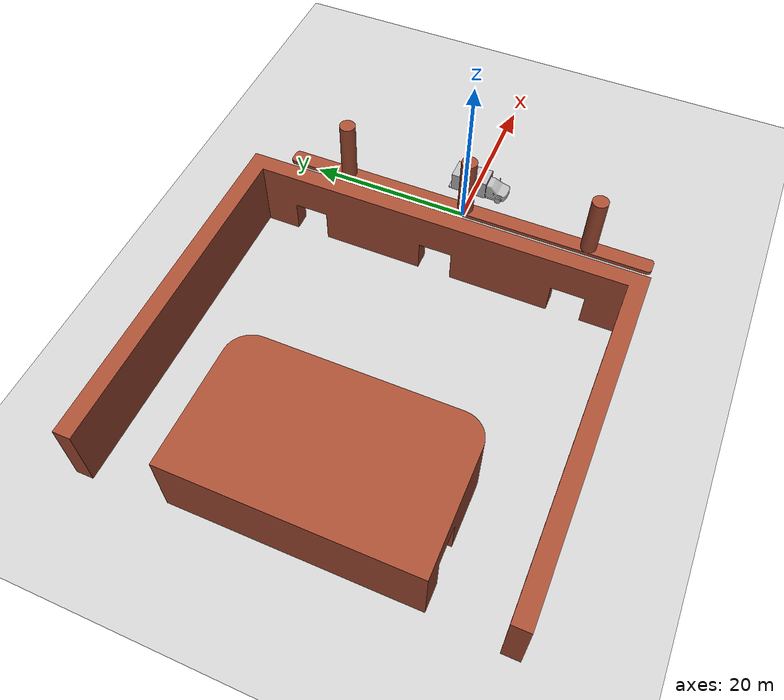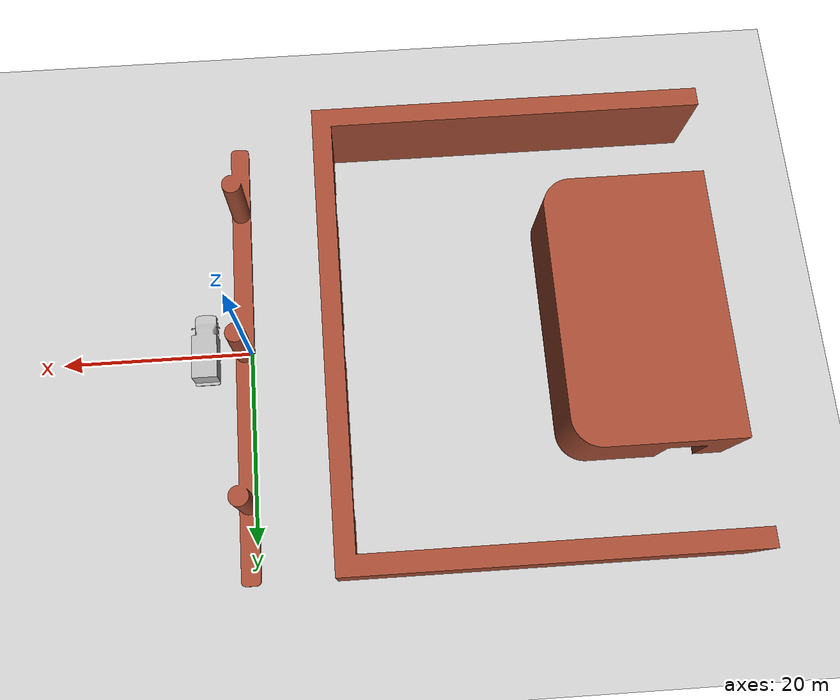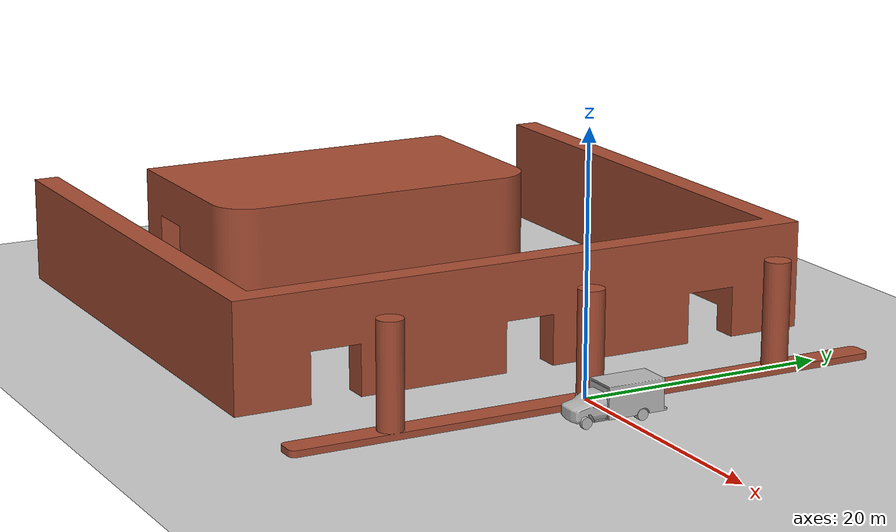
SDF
<sdf version="1.7">
 <world name="default">
  <light name="sun" type="directional">
   <pose>0 0 10 0 -0 0</pose>
   <diffuse>0.8 0.8 0.8 1</diffuse>
   <specular>0.2 0.2 0.2 1</specular>
   <attenuation>
    <range>1000</range>
    <constant>0.9</constant>
    <linear>0.01</linear>
    <quadratic>0.001</quadratic>
   </attenuation>
   <direction>-0.5 0.1 -0.9</direction>
   <spot><inner_angle>0</inner_angle><outer_angle>0</outer_angle><falloff>0</falloff></spot>
  </light>
  <model name="ground_plane">
   <static>1</static>
   <link name="link">
    <collision name="collision">
     <geometry><plane><normal>0 0 1</normal><size>100 100</size></plane></geometry>
     <surface><friction><ode><mu>100</mu><mu2>50</mu2></ode></friction></surface>
    </collision>
    <visual name="visual">
     <cast_shadows>0</cast_shadows>
     <geometry><plane><normal>0 0 1</normal><size>100 100</size></plane></geometry>
     <material>
      <script><uri>file://media/materials/scripts/gazebo.material</uri><name>Gazebo/Grey</name></script>
     </material>
    </visual>
    <velocity_decay><linear>0</linear><angular>0</angular></velocity_decay>
   </link>
  </model>
  <physics type="ode">
   <max_step_size>0.001</max_step_size>
   <real_time_factor>1</real_time_factor>
   <real_time_update_rate>1000</real_time_update_rate>
  </physics>
  <scene><ambient>0.4 0.4 0.4 1</ambient><background>0.7 0.7 0.7 1</background><shadows>1</shadows></scene>
  <spherical_coordinates>
   <surface_model>EARTH_WGS84</surface_model>
   <latitude_deg>0</latitude_deg>
   <longitude_deg>0</longitude_deg>
   <elevation>0</elevation>
   <heading_deg>0</heading_deg>
  </spherical_coordinates>
  <gravity>0 0 -9.8</gravity>
  <magnetic_field>6e-06 2.3e-05 -4.2e-05</magnetic_field>
  <atmosphere type="adiabatic"/>
  <model name="Ambulance">
   <link name="link">
    <pose>10.1638 0 0 0 -0 0</pose>
    <inertial>
     <mass>15600</mass>
     <inertia><ixx>0</ixx><ixy>0</ixy><ixz>0</ixz><iyy>0</iyy><iyz>0</iyz><izz>0</izz></inertia>
    </inertial>
    <visual name="visual">
     <geometry>
      <mesh><scale>0.0254 0.0254 0.0254</scale><uri>model://ambulance/meshes/ambulance.obj</uri></mesh>
     </geometry>
     <material><shader type="pixel"><normal_map>__default__</normal_map></shader></material>
    </visual>
    <collision name="collision">
     <geometry>
      <mesh>
       <uri>/home/x02wu/.gazebo/models/ambulance/meshes/ambulance.obj</uri>
       <scale>0.0254 0.0254 0.0254</scale>
      </mesh>
     </geometry>
     <surface>
      <friction>
       <ode><mu>1</mu><mu2>1</mu2><fdir1>0 0 0</fdir1><slip1>0</slip1><slip2>0</slip2></ode>
       <torsional>
        <coefficient>1</coefficient>
        <patch_radius>0</patch_radius>
        <surface_radius>0</surface_radius>
        <use_patch_radius>1</use_patch_radius>
        <ode><slip>0</slip></ode>
       </torsional>
      </friction>
      <bounce><restitution_coefficient>0</restitution_coefficient><threshold>1e+06</threshold></bounce>
      <contact>
       <collide_without_contact>0</collide_without_contact>
       <collide_without_contact_bitmask>1</collide_without_contact_bitmask>
       <collide_bitmask>1</collide_bitmask>
       <ode>
        <soft_cfm>0</soft_cfm>
        <soft_erp>0.2</soft_erp>
        <kp>1e+13</kp>
        <kd>1</kd>
        <max_vel>0.01</max_vel>
        <min_depth>0</min_depth>
       </ode>
       <bullet>
        <split_impulse>1</split_impulse>
        <split_impulse_penetration_threshold>-0.01</split_impulse_penetration_threshold>
        <soft_cfm>0</soft_cfm>
        <soft_erp>0.2</soft_erp>
        <kp>1e+13</kp>
        <kd>1</kd>
       </bullet>
      </contact>
     </surface>
    </collision>
   </link>
   <static>1</static>
   <pose>-5.50303 -0.449248 0 0 -0 0</pose>
  </model>
  <model name="Hospital_Structure">
   <link name="link_2">
    <inertial>
     <mass>1</mass>
     <inertia>
      <ixx>0.166667</ixx>
      <ixy>0</ixy>
      <ixz>0</ixz>
      <iyy>0.166667</iyy>
      <iyz>0</iyz>
      <izz>0.166667</izz>
     </inertia>
    </inertial>
    <pose>0.868757 0.091977 0 0 -0 0</pose>
    <visual name="visual">
     <geometry>
      <mesh>
       <uri>/home/x02wu/catkin_ws/src/jackal_simulator/jackal_gazebo/Media/models/OBJ/Intersection.obj</uri>
       <scale>1 1 1</scale>
      </mesh>
     </geometry>
     <material>
      <lighting>1</lighting>
      <script><uri>file://media/materials/scripts/gazebo.material</uri><name>Gazebo/Bricks</name></script>
      <shader type="pixel"><normal_map>__default__</normal_map></shader>
      <ambient>1 1 1 1</ambient>
      <diffuse>1 1 1 1</diffuse>
      <specular>0.2 0.2 0.2 1</specular>
      <emissive>0 0 0 1</emissive>
     </material>
    </visual>
    <collision name="collision">
     <geometry>
      <mesh>
       <uri>/home/x02wu/catkin_ws/src/jackal_simulator/jackal_gazebo/Media/models/OBJ/Intersection.obj</uri>
       <scale>1 1 1</scale>
      </mesh>
     </geometry>
     <surface>
      <friction>
       <ode><mu>1</mu><mu2>1</mu2><fdir1>0 0 0</fdir1><slip1>0</slip1><slip2>0</slip2></ode>
       <torsional>
        <coefficient>1</coefficient>
        <patch_radius>0</patch_radius>
        <surface_radius>0</surface_radius>
        <use_patch_radius>1</use_patch_radius>
        <ode><slip>0</slip></ode>
       </torsional>
      </friction>
      <bounce><restitution_coefficient>0</restitution_coefficient><threshold>1e+06</threshold></bounce>
      <contact>
       <collide_without_contact>0</collide_without_contact>
       <collide_without_contact_bitmask>1</collide_without_contact_bitmask>
       <collide_bitmask>1</collide_bitmask>
       <ode>
        <soft_cfm>0</soft_cfm>
        <soft_erp>0.2</soft_erp>
        <kp>1e+13</kp>
        <kd>1</kd>
        <max_vel>0.01</max_vel>
        <min_depth>0</min_depth>
       </ode>
       <bullet>
        <split_impulse>1</split_impulse>
        <split_impulse_penetration_threshold>-0.01</split_impulse_penetration_threshold>
        <soft_cfm>0</soft_cfm>
        <soft_erp>0.2</soft_erp>
        <kp>1e+13</kp>
        <kd>1</kd>
       </bullet>
      </contact>
     </surface>
    </collision>
   </link>
   <link name="link_3">
    <inertial>
     <mass>1</mass>
     <inertia>
      <ixx>0.166667</ixx>
      <ixy>0</ixy>
      <ixz>0</ixz>
      <iyy>0.166667</iyy>
      <iyz>0</iyz>
      <izz>0.166667</izz>
     </inertia>
    </inertial>
    <pose>-0.791003 0.121727 0 0 -0 0</pose>
    <visual name="visual">
     <geometry>
      <mesh>
       <uri>/home/x02wu/catkin_ws/src/jackal_simulator/jackal_gazebo/Media/models/OBJ/Exterior.obj</uri>
       <scale>1 1 1</scale>
      </mesh>
     </geometry>
     <material>
      <lighting>1</lighting>
      <script><uri>file://media/materials/scripts/gazebo.material</uri><name>Gazebo/Bricks</name></script>
      <shader type="pixel"><normal_map>__default__</normal_map></shader>
      <ambient>1 1 1 1</ambient>
      <diffuse>1 1 1 1</diffuse>
      <specular>0.2 0.2 0.2 1</specular>
      <emissive>0 0 0 1</emissive>
     </material>
    </visual>
    <collision name="collision">
     <geometry>
      <mesh>
       <uri>/home/x02wu/catkin_ws/src/jackal_simulator/jackal_gazebo/Media/models/OBJ/Exterior.obj</uri>
       <scale>1 1 1</scale>
      </mesh>
     </geometry>
     <surface>
      <friction>
       <ode><mu>1</mu><mu2>1</mu2><fdir1>0 0 0</fdir1><slip1>0</slip1><slip2>0</slip2></ode>
       <torsional>
        <coefficient>1</coefficient>
        <patch_radius>0</patch_radius>
        <surface_radius>0</surface_radius>
        <use_patch_radius>1</use_patch_radius>
        <ode><slip>0</slip></ode>
       </torsional>
      </friction>
      <bounce><restitution_coefficient>0</restitution_coefficient><threshold>1e+06</threshold></bounce>
      <contact>
       <collide_without_contact>0</collide_without_contact>
       <collide_without_contact_bitmask>1</collide_without_contact_bitmask>
       <collide_bitmask>1</collide_bitmask>
       <ode>
        <soft_cfm>0</soft_cfm>
        <soft_erp>0.2</soft_erp>
        <kp>1e+13</kp>
        <kd>1</kd>
        <max_vel>0.01</max_vel>
        <min_depth>0</min_depth>
       </ode>
       <bullet>
        <split_impulse>1</split_impulse>
        <split_impulse_penetration_threshold>-0.01</split_impulse_penetration_threshold>
        <soft_cfm>0</soft_cfm>
        <soft_erp>0.2</soft_erp>
        <kp>1e+13</kp>
        <kd>1</kd>
       </bullet>
      </contact>
     </surface>
    </collision>
   </link>
   <link name="link_4">
    <inertial>
     <mass>1</mass>
     <inertia>
      <ixx>0.166667</ixx>
      <ixy>0</ixy>
      <ixz>0</ixz>
      <iyy>0.166667</iyy>
      <iyz>0</iyz>
      <izz>0.166667</izz>
     </inertia>
    </inertial>
    <pose>-0.077753 -0.213703 0 0 -0 0</pose>
    <visual name="visual">
     <geometry>
      <mesh>
       <uri>/home/x02wu/catkin_ws/src/jackal_simulator/jackal_gazebo/Media/models/OBJ/Interior Room.obj</uri>
       <scale>1 1 1</scale>
      </mesh>
     </geometry>
     <material>
      <lighting>1</lighting>
      <script><uri>file://media/materials/scripts/gazebo.material</uri><name>Gazebo/Bricks</name></script>
      <shader type="pixel"><normal_map>__default__</normal_map></shader>
      <ambient>1 1 1 1</ambient>
      <diffuse>1 1 1 1</diffuse>
      <specular>0.2 0.2 0.2 1</specular>
      <emissive>0 0 0 1</emissive>
     </material>
    </visual>
    <collision name="collision">
     <geometry>
      <mesh>
       <uri>/home/x02wu/catkin_ws/src/jackal_simulator/jackal_gazebo/Media/models/OBJ/Interior Room.obj</uri>
       <scale>1 1 1</scale>
      </mesh>
     </geometry>
     <surface>
      <friction>
       <ode><mu>1</mu><mu2>1</mu2><fdir1>0 0 0</fdir1><slip1>0</slip1><slip2>0</slip2></ode>
       <torsional>
        <coefficient>1</coefficient>
        <patch_radius>0</patch_radius>
        <surface_radius>0</surface_radius>
        <use_patch_radius>1</use_patch_radius>
        <ode><slip>0</slip></ode>
       </torsional>
      </friction>
      <bounce><restitution_coefficient>0</restitution_coefficient><threshold>1e+06</threshold></bounce>
      <contact>
       <collide_without_contact>0</collide_without_contact>
       <collide_without_contact_bitmask>1</collide_without_contact_bitmask>
       <collide_bitmask>1</collide_bitmask>
       <ode>
        <soft_cfm>0</soft_cfm>
        <soft_erp>0.2</soft_erp>
        <kp>1e+13</kp>
        <kd>1</kd>
        <max_vel>0.01</max_vel>
        <min_depth>0</min_depth>
       </ode>
       <bullet>
        <split_impulse>1</split_impulse>
        <split_impulse_penetration_threshold>-0.01</split_impulse_penetration_threshold>
        <soft_cfm>0</soft_cfm>
        <soft_erp>0.2</soft_erp>
        <kp>1e+13</kp>
        <kd>1</kd>
       </bullet>
      </contact>
     </surface>
    </collision>
   </link>
   <static>1</static>
   <pose>2.82804 3.88213 0 0 -0 0</pose>
  </model>
 </world>
</sdf>
